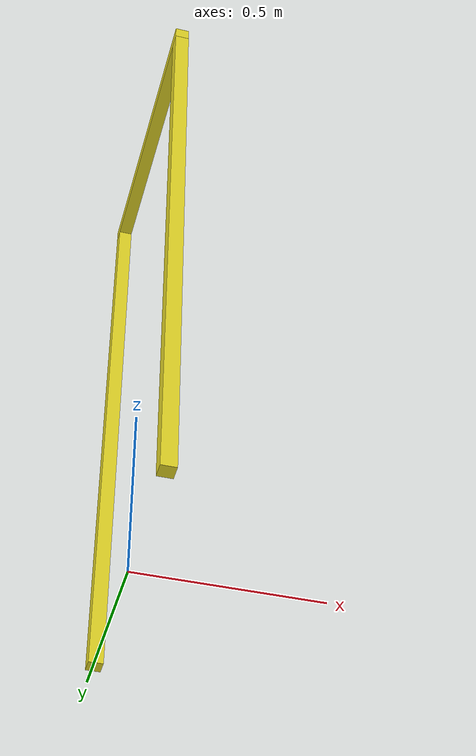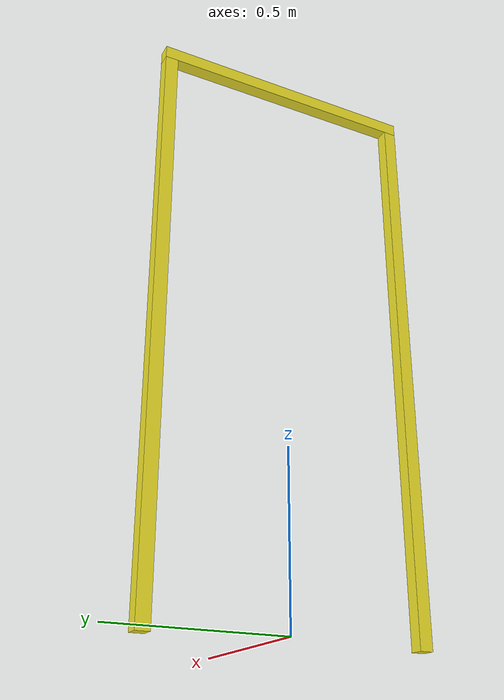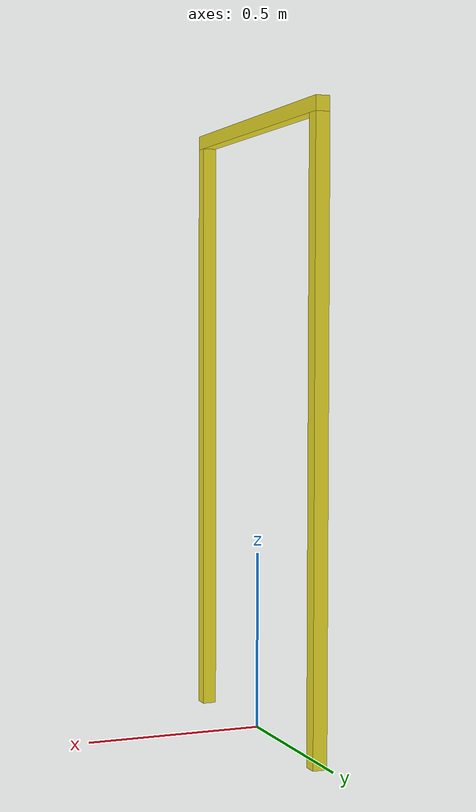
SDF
<?xml version="1.0" ?>
<sdf version="1.6">
  <model name="portal_frame">
    <static>true</static>
    <link name="link">

     <visual name="viz_top_bar">
        <pose>0 0 1.705 0 0 0</pose>
        <geometry>
          <box>
            <size>0.04 0.84 0.04</size>
          </box>
        </geometry>
        <material>
          <script>
            <uri>model://portal_frame/materials/scripts</uri>
            <uri>model://portal_frame/materials/textures</uri>
            <!-- name must match a name declared inside .material file -->
            <name>technical_saefty_yellow</name>
          </script>
        </material>
      </visual>

      <collision name="top_bar">
        <pose>0 0 1.705 0 0 0</pose>
        <geometry>
          <box>
            <size>0.04 0.84 0.04</size>
          </box>
        </geometry>
      </collision>

      <visual name="viz_front">
        <pose>0 0.4 0.835 0 0 0</pose>
        <geometry>
          <box>
            <size>0.04 0.04 1.7</size>
          </box>
        </geometry>
        <material>
          <script>
            <uri>model://portal_frame/materials/scripts</uri>
            <uri>model://portal_frame/materials/textures</uri>
            <name>technical_saefty_yellow</name>
          </script>
        </material>
      </visual>

      <collision name="front">
        <pose>0 0.4 0.835 0 0 0</pose>
        <geometry>
          <box>
            <size>0.04 0.04 1.7</size>
          </box>
        </geometry>
      </collision>

      <visual name="viz_back">
        <pose>0 -0.4 0.835 0 0 0</pose>
        <geometry>
          <box>
              <size>0.04 0.04 1.7</size>
          </box>
        </geometry>
        <material>
          <script>
            <uri>model://portal_frame/materials/scripts</uri>
            <uri>model://portal_frame/materials/textures</uri>
            <name>technical_saefty_yellow</name>
          </script>
        </material>
      </visual>

      <collision name="back">
        <pose>0 -0.4 0.835 0 0 0</pose>
        <geometry>
          <box>
              <size>0.04 0.04 1.7</size>
          </box>
        </geometry>
      </collision>

    </link>
  </model>
</sdf>
